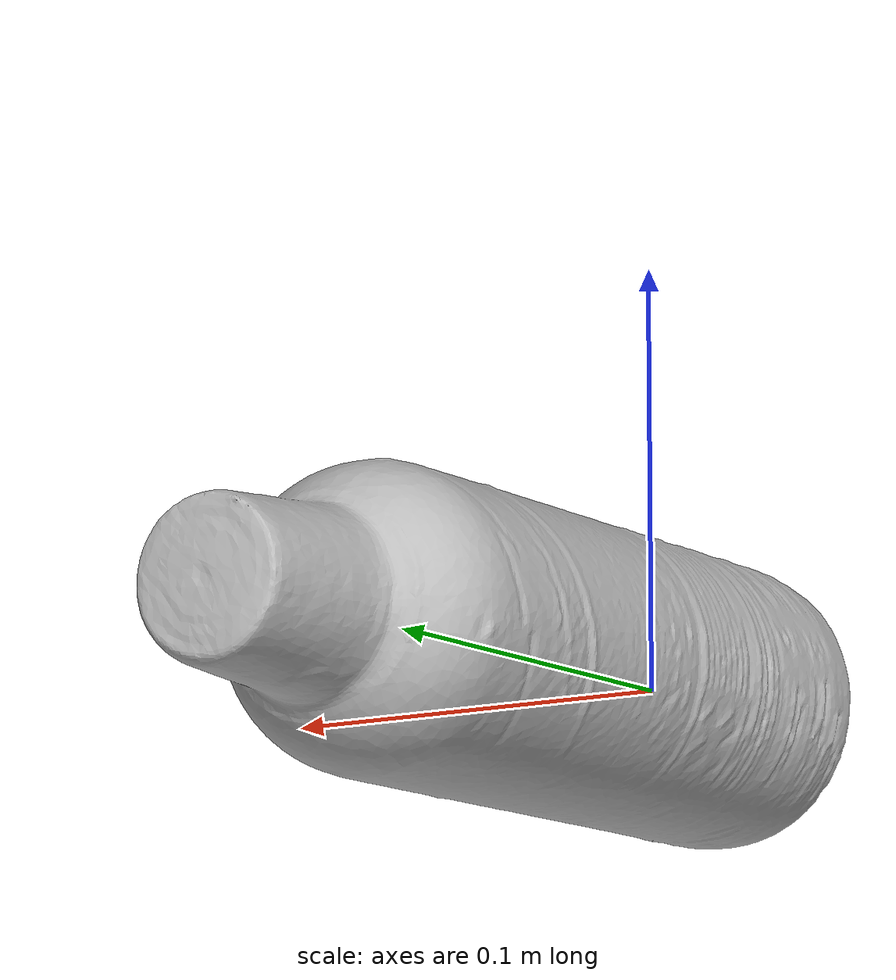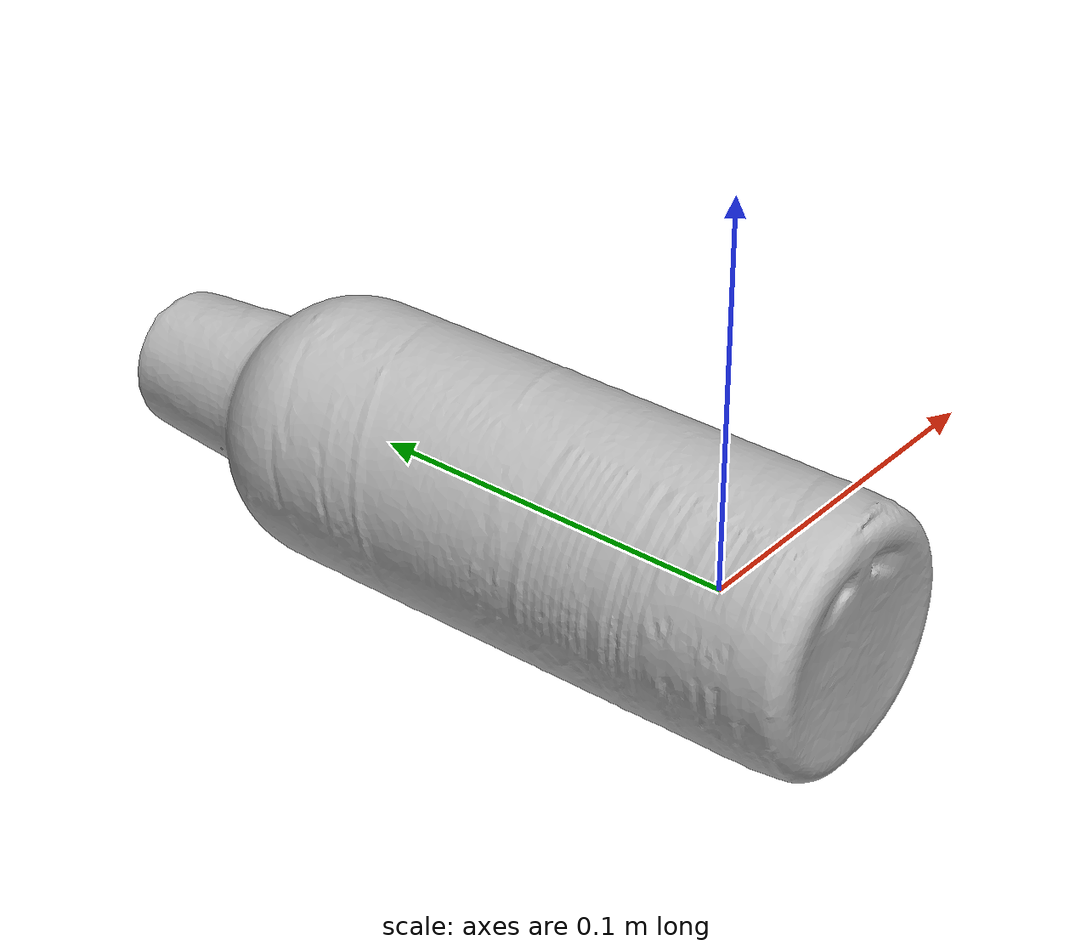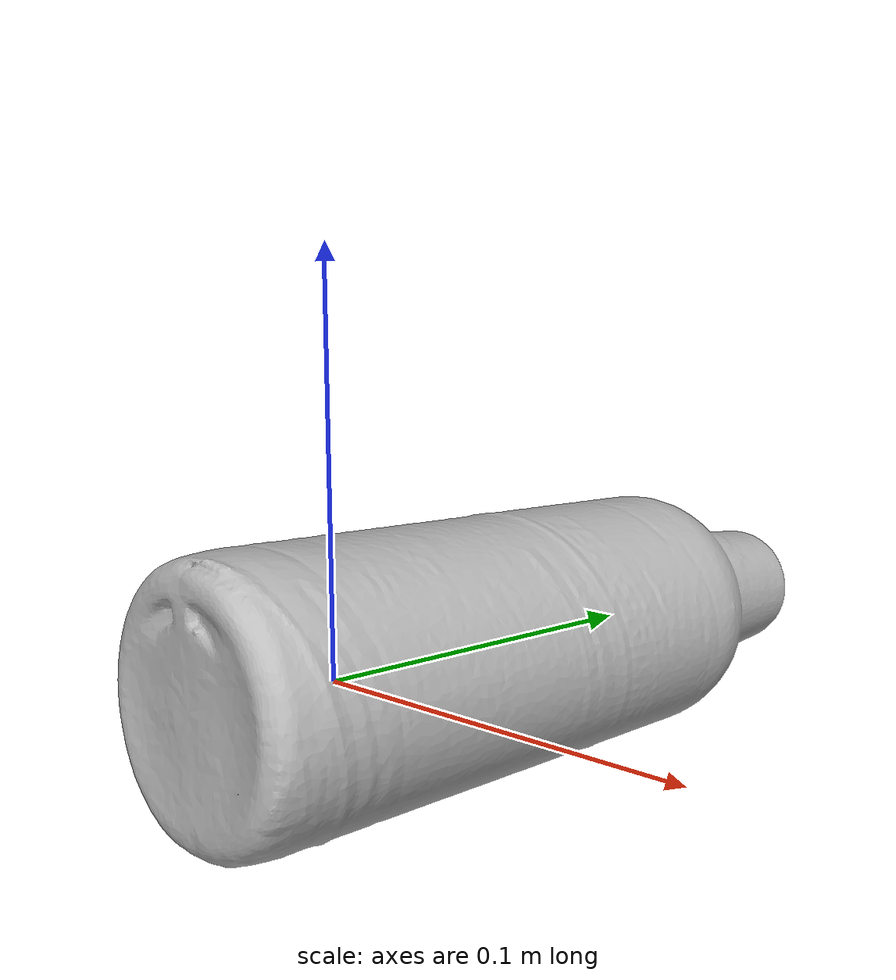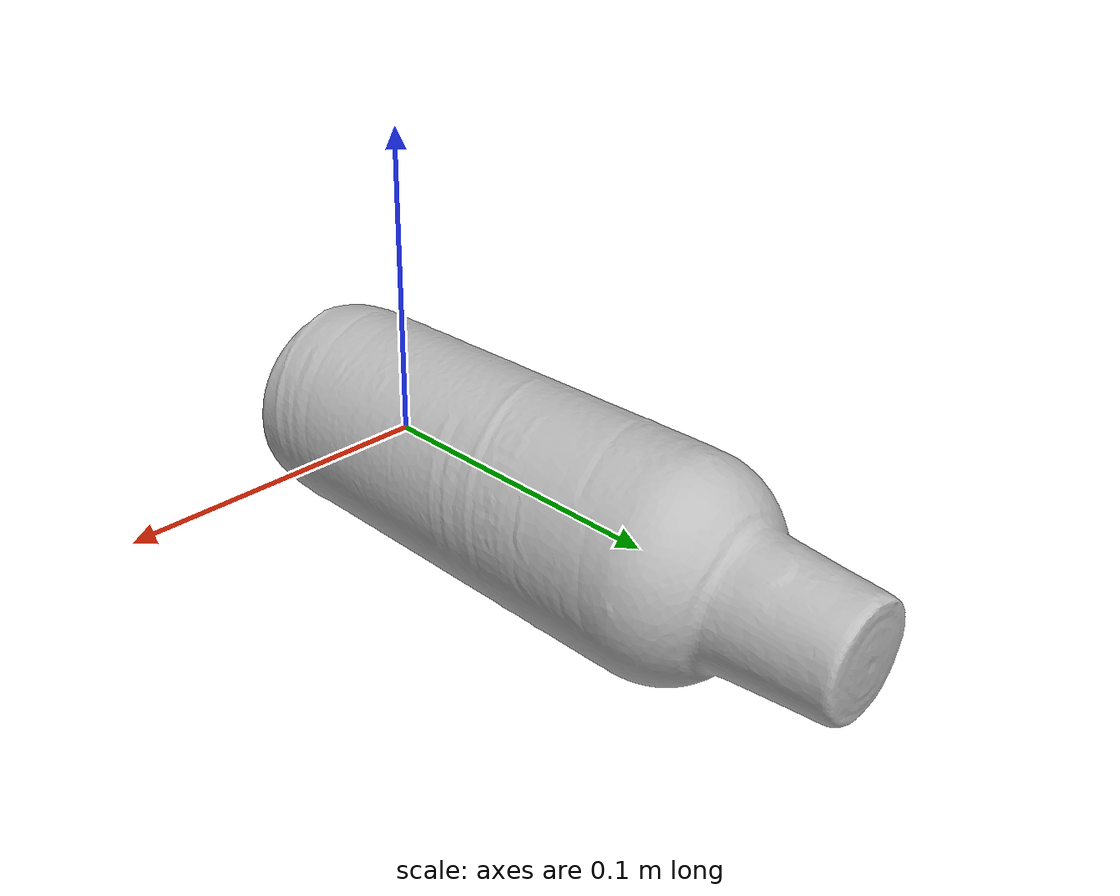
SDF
<?xml version='1.0'?>
<sdf version="1.4">
  <model name="BathDetergent">
    <static>false</static>
    <link name="link">
      <inertial>
        <pose>-0.00036675227833668077 0.05605095225250008 0.00020957060325030685 1.5661963209343925 -1.4828961002257302 -3.1284722633404587</pose>
        <mass>0.06702908137088558</mass>
        <inertia>
          <ixx>0.0002224717226962089</ixx>
          <ixy>-1.246995415639826e-21</ixy>
          <ixz>-1.882328320113094e-21</ixz>
          <iyy>0.00022232367565218334</iyy>
          <iyz>-3.213508950381842e-22</iyz>
          <izz>3.6103440478832204e-05</izz>
        </inertia>
      </inertial>
      <collision name="collision">
        <geometry>
          <mesh>
            <!-- Use a downsampled mesh for collisions -->
            <uri>model:///BathDetergent/BathDetergent_250_collision.obj</uri>
	        </mesh>
        </geometry>
        <surface>
      </surface>
      </collision>
      <visual name="visual">
        <geometry>
          <mesh>
            <uri>model:///BathDetergent/BathDetergent_25k_tex.obj</uri>
	        </mesh>
        </geometry>
        <material>
          <script>
            <uri>model:///BathDetergent/BathDetergent.material</uri>
            <name>BathDetergent</name>
          </script>
        </material>
      </visual>
    </link>
  </model>
</sdf>
